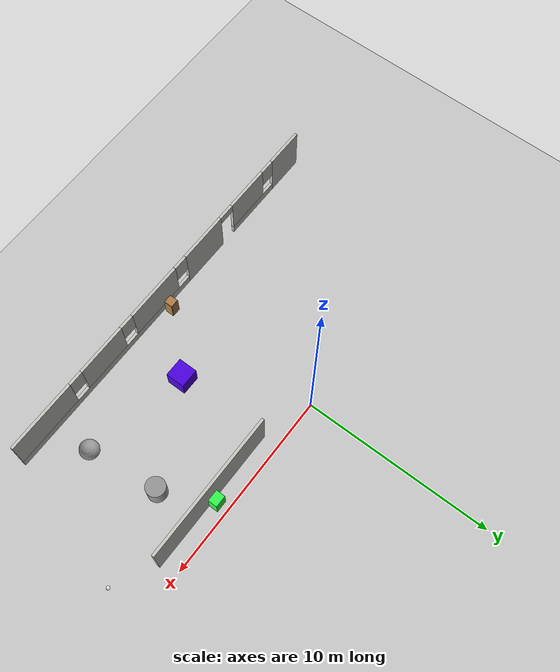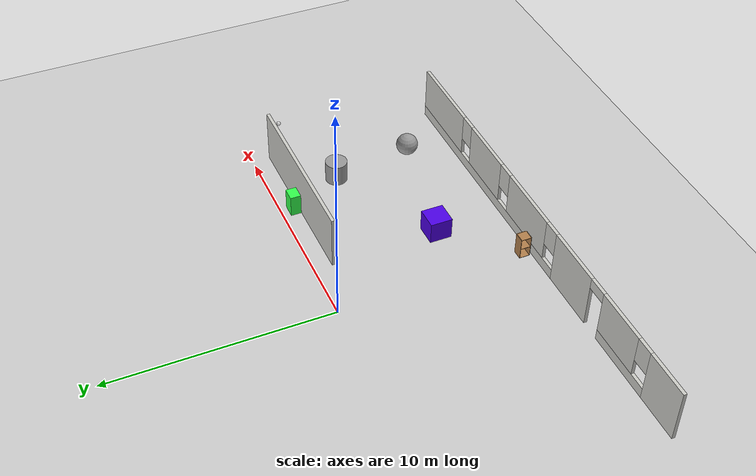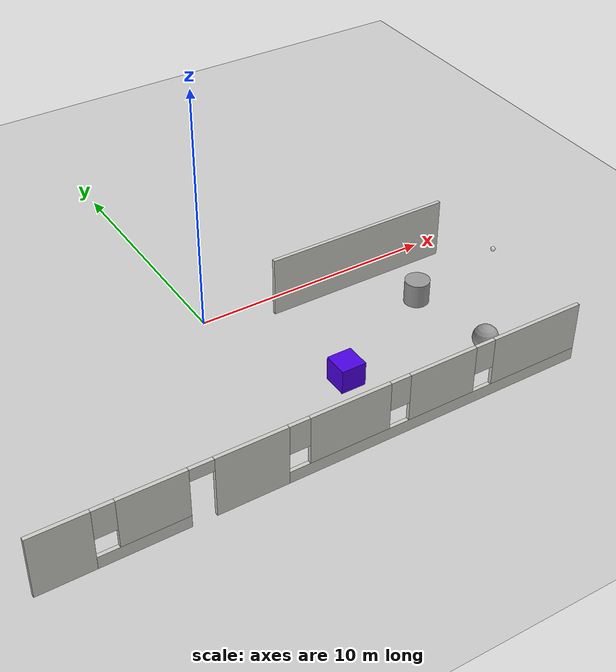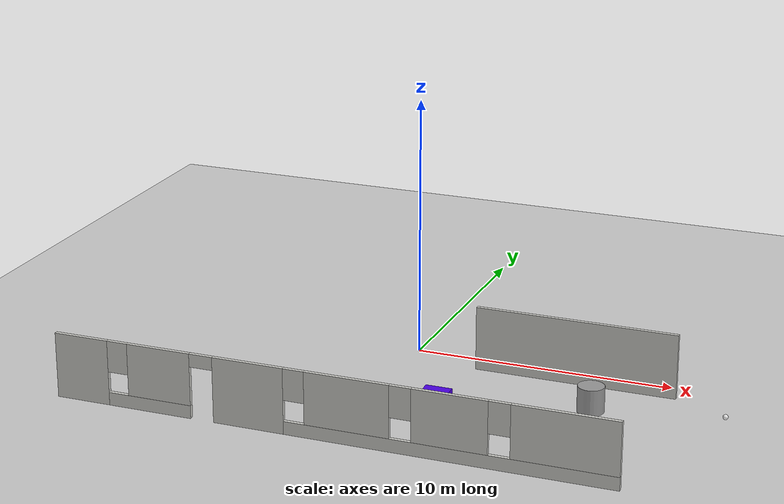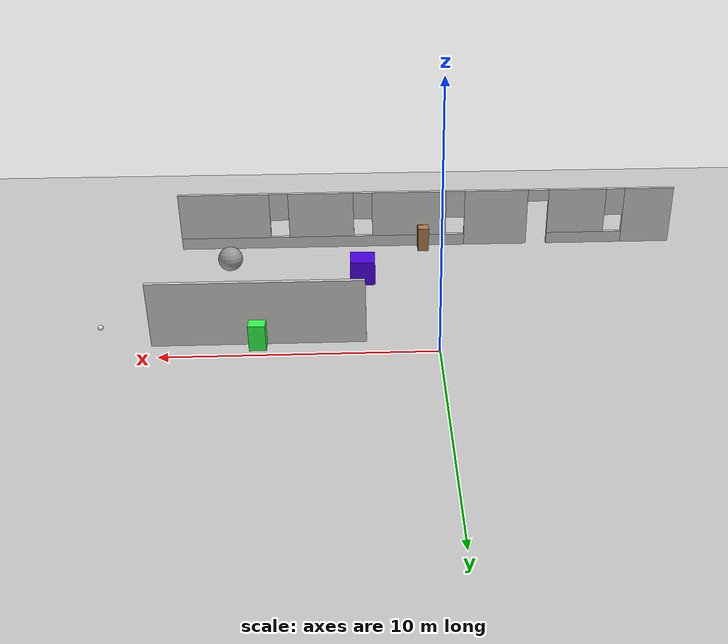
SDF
<sdf version="1.7">
 <world name="default">
  <model name="ground_plane">
   <static>1</static>
   <link name="link">
    <collision name="collision">
     <geometry><plane><normal>0 0 1</normal><size>100 100</size></plane></geometry>
     <surface><friction><ode><mu>100</mu><mu2>50</mu2></ode></friction></surface>
    </collision>
    <visual name="visual">
     <cast_shadows>0</cast_shadows>
     <geometry><plane><normal>0 0 1</normal><size>100 100</size></plane></geometry>
     <material>
      <script><uri>file://media/materials/scripts/gazebo.material</uri><name>Gazebo/Grey</name></script>
     </material>
    </visual>
   </link>
  </model>
  <model name="unit_cylinder">
   <pose>7.77748 -3.12633 0.499994 -3e-06 -1e-06 -0</pose>
   <link name="link">
    <inertial>
     <mass>1</mass>
     <inertia><ixx>0.145833</ixx><ixy>0</ixy><ixz>0</ixz><iyy>0.145833</iyy><iyz>0</iyz><izz>0.125</izz></inertia>
    </inertial>
    <collision name="collision">
     <geometry><cylinder><radius>0.5</radius><length>1</length></cylinder></geometry>
    </collision>
    <visual name="visual">
     <geometry><cylinder><radius>0.5</radius><length>1</length></cylinder></geometry>
     <material>
      <script><name>Gazebo/Grey</name><uri>file://media/materials/scripts/gazebo.material</uri></script>
     </material>
    </visual>
   </link>
  </model>
  <model name="unit_sphere">
   <pose>8.212 -6.8507 0.5 0 -0 0</pose>
   <link name="link">
    <inertial>
     <mass>1</mass>
     <inertia><ixx>0.1</ixx><ixy>0</ixy><ixz>0</ixz><iyy>0.1</iyy><iyz>0</iyz><izz>0.1</izz></inertia>
    </inertial>
    <collision name="collision"><geometry><sphere><radius>0.5</radius></sphere></geometry></collision>
    <visual name="visual">
     <geometry><sphere><radius>0.5</radius></sphere></geometry>
     <material>
      <script><name>Gazebo/Grey</name><uri>file://media/materials/scripts/gazebo.material</uri></script>
     </material>
    </visual>
   </link>
  </model>
  <model name="my_ball">
   <link name="link_0">
    <inertial>
     <mass>1</mass>
     <inertia><ixx>0.1</ixx><ixy>0</ixy><ixz>0</ixz><iyy>0.1</iyy><iyz>0</iyz><izz>0.1</izz></inertia>
    </inertial>
    <visual name="visual">
     <geometry><sphere><radius>0.1</radius></sphere></geometry>
     <material>
      <lighting>1</lighting>
      <script><uri>file://media/materials/scripts/gazebo.material</uri><name>Gazebo/White</name></script>
      <ambient>1 1 1 1</ambient>
      <diffuse>1 1 1 1</diffuse>
      <specular>1 1 1 1</specular>
      <emissive>1 1 1 1</emissive>
      <shader type="vertex"><normal_map>__default__</normal_map></shader>
     </material>
    </visual>
    <collision name="collision">
     <geometry><sphere><radius>0.1</radius></sphere></geometry>
     <surface>
      <friction>
       <ode><mu>1</mu><mu2>1</mu2><fdir1>0 0 0</fdir1><slip1>0</slip1><slip2>0</slip2></ode>
       <torsional>
        <coefficient>1</coefficient>
        <patch_radius>0</patch_radius>
        <surface_radius>0</surface_radius>
        <use_patch_radius>1</use_patch_radius>
        <ode><slip>0</slip></ode>
       </torsional>
      </friction>
      <bounce><restitution_coefficient>0</restitution_coefficient><threshold>1e+06</threshold></bounce>
      <contact>
       <collide_without_contact>0</collide_without_contact>
       <collide_without_contact_bitmask>1</collide_without_contact_bitmask>
       <collide_bitmask>1</collide_bitmask>
       <ode>
        <soft_cfm>0</soft_cfm>
        <soft_erp>0.2</soft_erp>
        <kp>1e+13</kp>
        <kd>1</kd>
        <max_vel>0.01</max_vel>
        <min_depth>0</min_depth>
       </ode>
       <bullet>
        <split_impulse>1</split_impulse>
        <split_impulse_penetration_threshold>-0.01</split_impulse_penetration_threshold>
        <soft_cfm>0</soft_cfm>
        <soft_erp>0.2</soft_erp>
        <kp>1e+13</kp>
        <kd>1</kd>
       </bullet>
      </contact>
     </surface>
    </collision>
   </link>
   <static>0</static>
   <pose>12.4706 -2.06062 0.1 0 -0 0</pose>
  </model>
  <model name="unit_box12">
   <link name="link">
    <inertial>
     <mass>1</mass>
     <inertia>
      <ixx>0.166667</ixx>
      <ixy>0</ixy>
      <ixz>0</ixz>
      <iyy>0.166667</iyy>
      <iyz>0</iyz>
      <izz>0.166667</izz>
     </inertia>
    </inertial>
    <visual name="visual">
     <geometry><box><size>1 1 1</size></box></geometry>
     <material>
      <script><name>Gazebo/Grey</name><uri>file://media/materials/scripts/gazebo.material</uri></script>
      <shader type="pixel"><normal_map>__default__</normal_map></shader>
      <ambient>0.3 0 0.9 0</ambient>
      <diffuse>0.7 0.7 0.7 1</diffuse>
      <specular>0.01 0.01 0.01 1</specular>
      <emissive>0 0 0 1</emissive>
     </material>
    </visual>
    <collision name="collision">
     <geometry><box><size>1 1 1</size></box></geometry>
     <surface>
      <friction>
       <ode><mu>1</mu><mu2>1</mu2><fdir1>0 0 0</fdir1><slip1>0</slip1><slip2>0</slip2></ode>
       <torsional>
        <coefficient>1</coefficient>
        <patch_radius>0</patch_radius>
        <surface_radius>0</surface_radius>
        <use_patch_radius>1</use_patch_radius>
        <ode><slip>0</slip></ode>
       </torsional>
      </friction>
      <bounce><restitution_coefficient>0</restitution_coefficient><threshold>1e+06</threshold></bounce>
      <contact>
       <collide_without_contact>0</collide_without_contact>
       <collide_without_contact_bitmask>1</collide_without_contact_bitmask>
       <collide_bitmask>1</collide_bitmask>
       <ode>
        <soft_cfm>0</soft_cfm>
        <soft_erp>0.2</soft_erp>
        <kp>1e+13</kp>
        <kd>1</kd>
        <max_vel>0.01</max_vel>
        <min_depth>0</min_depth>
       </ode>
       <bullet>
        <split_impulse>1</split_impulse>
        <split_impulse_penetration_threshold>-0.01</split_impulse_penetration_threshold>
        <soft_cfm>0</soft_cfm>
        <soft_erp>0.2</soft_erp>
        <kp>1e+13</kp>
        <kd>1</kd>
       </bullet>
      </contact>
     </surface>
    </collision>
   </link>
   <static>0</static>
   <pose>2.74369 -5.72825 0.5 0 -0 0</pose>
  </model>
  <model name="cabinet_0">
   <static>1</static>
   <link name="cabinet_bottom_plate">
    <inertial>
     <pose>0 0 -1 0 -0 0</pose>
     <inertia><ixx>2.05</ixx><ixy>0</ixy><ixz>0</ixz><iyy>2.05</iyy><iyz>0</iyz><izz>2.05</izz></inertia>
     <mass>25</mass>
    </inertial>
    <collision name="cabinet_bottom_plate_geom">
     <pose>0 0 0.01 0 -0 0</pose>
     <geometry><box><size>0.45 0.45 0.02</size></box></geometry>
    </collision>
    <visual name="cabinet_bottom_plate_geom_visual">
     <pose>0 0 0.01 0 -0 0</pose>
     <geometry><box><size>0.45 0.45 0.02</size></box></geometry>
     <material>
      <script><uri>file://media/materials/scripts/gazebo.material</uri><name>Gazebo/Wood</name></script>
     </material>
    </visual>
    <collision name="cabinet_bottom_plate_geom_cabinet_back_plate">
     <pose>0.235 0 0.51 0 -0 0</pose>
     <geometry><box><size>0.02 0.45 1.02</size></box></geometry>
    </collision>
    <visual name="cabinet_bottom_plate_geom_cabinet_back_plate_visual">
     <pose>0.235 0 0.51 0 -0 0</pose>
     <geometry><box><size>0.02 0.45 1.02</size></box></geometry>
     <material>
      <script><uri>file://media/materials/scripts/gazebo.material</uri><name>Gazebo/Wood</name></script>
     </material>
    </visual>
    <collision name="cabinet_bottom_plate_geom_cabinet_left_plate">
     <pose>0 0.235 0.51 0 -0 0</pose>
     <geometry><box><size>0.45 0.02 1.02</size></box></geometry>
    </collision>
    <visual name="cabinet_bottom_plate_geom_cabinet_left_plate_visual">
     <pose>0 0.235 0.51 0 -0 0</pose>
     <geometry><box><size>0.45 0.02 1.02</size></box></geometry>
     <material>
      <script><uri>file://media/materials/scripts/gazebo.material</uri><name>Gazebo/Wood</name></script>
     </material>
    </visual>
    <collision name="cabinet_bottom_plate_geom_cabinet_middle_plate">
     <pose>0 0 0.51 0 -0 0</pose>
     <geometry><box><size>0.45 0.45 0.02</size></box></geometry>
    </collision>
    <visual name="cabinet_bottom_plate_geom_cabinet_middle_plate_visual">
     <pose>0 0 0.51 0 -0 0</pose>
     <geometry><box><size>0.45 0.45 0.02</size></box></geometry>
     <material>
      <script><uri>file://media/materials/scripts/gazebo.material</uri><name>Gazebo/Wood</name></script>
     </material>
    </visual>
    <collision name="cabinet_bottom_plate_geom_cabinet_right_plate">
     <pose>0 -0.235 0.51 0 -0 0</pose>
     <geometry><box><size>0.45 0.02 1.02</size></box></geometry>
    </collision>
    <visual name="cabinet_bottom_plate_geom_cabinet_right_plate_visual">
     <pose>0 -0.235 0.51 0 -0 0</pose>
     <geometry><box><size>0.45 0.02 1.02</size></box></geometry>
     <material>
      <script><uri>file://media/materials/scripts/gazebo.material</uri><name>Gazebo/Wood</name></script>
     </material>
    </visual>
    <collision name="cabinet_bottom_plate_geom_cabinet_top_plate">
     <pose>0 0 1.01 0 -0 0</pose>
     <geometry><box><size>0.45 0.45 0.02</size></box></geometry>
    </collision>
    <visual name="cabinet_bottom_plate_geom_cabinet_top_plate_visual">
     <pose>0 0 1.01 0 -0 0</pose>
     <geometry><box><size>0.45 0.45 0.02</size></box></geometry>
     <material>
      <script><uri>file://media/materials/scripts/gazebo.material</uri><name>Gazebo/Wood</name></script>
     </material>
    </visual>
   </link>
   <pose>0.120833 -8.54479 0 0 -0 0</pose>
  </model>
  <model name="unit_box_green">
   <link name="link">
    <inertial>
     <mass>1</mass>
     <inertia>
      <ixx>0.166667</ixx>
      <ixy>0</ixy>
      <ixz>0</ixz>
      <iyy>0.166667</iyy>
      <iyz>0</iyz>
      <izz>0.166667</izz>
     </inertia>
    </inertial>
    <visual name="visual">
     <geometry><box><size>0.617794 0.479075 1</size></box></geometry>
     <material>
      <script><name>Gazebo/Grey</name><uri>file://media/materials/scripts/gazebo.material</uri></script>
      <shader type="pixel"><normal_map>__default__</normal_map></shader>
      <ambient>0.2 1 0.3 0</ambient>
      <diffuse>0.7 0.7 0.7 1</diffuse>
      <specular>0.01 0.01 0.01 1</specular>
      <emissive>0 0 0 1</emissive>
     </material>
    </visual>
    <collision name="collision">
     <geometry><box><size>0.617794 0.479075 1</size></box></geometry>
     <surface>
      <friction>
       <ode><mu>1</mu><mu2>1</mu2><fdir1>0 0 0</fdir1><slip1>0</slip1><slip2>0</slip2></ode>
       <torsional>
        <coefficient>1</coefficient>
        <patch_radius>0</patch_radius>
        <surface_radius>0</surface_radius>
        <use_patch_radius>1</use_patch_radius>
        <ode><slip>0</slip></ode>
       </torsional>
      </friction>
      <bounce><restitution_coefficient>0</restitution_coefficient><threshold>1e+06</threshold></bounce>
      <contact>
       <collide_without_contact>0</collide_without_contact>
       <collide_without_contact_bitmask>1</collide_without_contact_bitmask>
       <collide_bitmask>1</collide_bitmask>
       <ode>
        <soft_cfm>0</soft_cfm>
        <soft_erp>0.2</soft_erp>
        <kp>1e+13</kp>
        <kd>1</kd>
        <max_vel>0.01</max_vel>
        <min_depth>0</min_depth>
       </ode>
       <bullet>
        <split_impulse>1</split_impulse>
        <split_impulse_penetration_threshold>-0.01</split_impulse_penetration_threshold>
        <soft_cfm>0</soft_cfm>
        <soft_erp>0.2</soft_erp>
        <kp>1e+13</kp>
        <kd>1</kd>
       </bullet>
      </contact>
     </surface>
    </collision>
   </link>
   <static>0</static>
   <pose>6.51345 -0.571137 0.5 0 1e-06 -0.002895</pose>
  </model>
  <model name="training_area">
   <link name="Wall_34">
    <pose>6.59252 -1.22485 0 0 -0 0</pose>
    <visual name="Wall_34_Visual">
     <pose>0 0 1.25 0 -0 0</pose>
     <geometry><box><size>7.75 0.15 2.5</size></box></geometry>
     <material>
      <script><uri>file://media/materials/scripts/gazebo.material</uri><name>Gazebo/CeilingTiled</name></script>
      <ambient>0.996078 0.47451 0.0196078 1</ambient>
      <shader type="pixel"/>
     </material>
     <meta><layer>0</layer></meta>
    </visual>
    <collision name="Wall_34_Collision">
     <pose>0 0 1.25 0 -0 0</pose>
     <geometry><box><size>7.75 0.15 2.5</size></box></geometry>
     <surface>
      <friction>
       <ode><mu>1</mu><mu2>1</mu2><fdir1>0 0 0</fdir1><slip1>0</slip1><slip2>0</slip2></ode>
       <torsional>
        <coefficient>1</coefficient>
        <patch_radius>0</patch_radius>
        <surface_radius>0</surface_radius>
        <use_patch_radius>1</use_patch_radius>
        <ode><slip>0</slip></ode>
       </torsional>
      </friction>
      <bounce><restitution_coefficient>0</restitution_coefficient><threshold>1e+06</threshold></bounce>
      <contact>
       <collide_without_contact>0</collide_without_contact>
       <collide_without_contact_bitmask>1</collide_without_contact_bitmask>
       <collide_bitmask>1</collide_bitmask>
       <ode>
        <soft_cfm>0</soft_cfm>
        <soft_erp>0.2</soft_erp>
        <kp>1e+13</kp>
        <kd>1</kd>
        <max_vel>0.01</max_vel>
        <min_depth>0</min_depth>
       </ode>
       <bullet>
        <split_impulse>1</split_impulse>
        <split_impulse_penetration_threshold>-0.01</split_impulse_penetration_threshold>
        <soft_cfm>0</soft_cfm>
        <soft_erp>0.2</soft_erp>
        <kp>1e+13</kp>
        <kd>1</kd>
       </bullet>
      </contact>
     </surface>
    </collision>
   </link>
   <link name="Wall_6">
    <pose>0.005 -9.3 0 0 -0 0</pose>
    <inertial>
     <mass>1</mass>
     <inertia><ixx>1</ixx><ixy>0</ixy><ixz>0</ixz><iyy>1</iyy><iyz>0</iyz><izz>1</izz></inertia>
    </inertial>
    <visual name="Wall_6_Visual_7">
     <pose>4.59406 0 1.5 0 -0 0</pose>
     <geometry><box><size>2.78031 0.15 2</size></box></geometry>
     <material>
      <script><uri>file://media/materials/scripts/gazebo.material</uri><name>Gazebo/CeilingTiled</name></script>
      <ambient>1 0.165 0.306 1</ambient>
      <shader type="pixel"><normal_map>__default__</normal_map></shader>
      <diffuse>1 1 1 1</diffuse>
      <specular>0 0 0 1</specular>
      <emissive>0 0 0 1</emissive>
     </material>
     <meta><layer>0</layer></meta>
    </visual>
    <visual name="Wall_6_Visual_9">
     <pose>-8.09976 0 1.9 0 -0 0</pose>
     <geometry><box><size>0.8 0.15 1.2</size></box></geometry>
     <material>
      <script><uri>file://media/materials/scripts/gazebo.material</uri><name>Gazebo/CeilingTiled</name></script>
      <ambient>0.6 0.965 0.406 1</ambient>
      <shader type="pixel"><normal_map>__default__</normal_map></shader>
      <diffuse>1 1 1 1</diffuse>
      <specular>0 0 0 1</specular>
      <emissive>0 0 0 1</emissive>
     </material>
     <meta><layer>0</layer></meta>
    </visual>
    <visual name="Wall_6_Visual_11">
     <pose>2.8039 0 1.9 0 -0 0</pose>
     <geometry><box><size>0.8 0.15 1.2</size></box></geometry>
     <material>
      <script><uri>file://media/materials/scripts/gazebo.material</uri><name>Gazebo/CeilingTiled</name></script>
      <ambient>1 0.165 0.306 1</ambient>
      <shader type="pixel"><normal_map>__default__</normal_map></shader>
      <diffuse>1 1 1 1</diffuse>
      <specular>0 0 0 1</specular>
      <emissive>0 0 0 1</emissive>
     </material>
     <meta><layer>0</layer></meta>
    </visual>
    <visual name="Wall_6_Visual_12">
     <pose>6.38421 0 1.9 0 -0 0</pose>
     <geometry><box><size>0.8 0.15 1.2</size></box></geometry>
     <material>
      <script><uri>file://media/materials/scripts/gazebo.material</uri><name>Gazebo/CeilingTiled</name></script>
      <ambient>1 0.765 0.906 1</ambient>
      <shader type="pixel"><normal_map>__default__</normal_map></shader>
      <diffuse>1 1 1 1</diffuse>
      <specular>0 0 0 1</specular>
      <emissive>0 0 0 1</emissive>
     </material>
     <meta><layer>0</layer></meta>
    </visual>
    <visual name="Wall_6_Visual_2">
     <pose>-6.85666 0 0.25 0 -0 0</pose>
     <geometry><box><size>3.2862 0.15 0.5</size></box></geometry>
     <material>
      <script><uri>file://media/materials/scripts/gazebo.material</uri><name>Gazebo/CeilingTiled</name></script>
      <ambient>0.5 0.9 0.1 1</ambient>
      <shader type="pixel"><normal_map>__default__</normal_map></shader>
      <diffuse>1 1 1 1</diffuse>
      <specular>0 0 0 1</specular>
      <emissive>0 0 0 1</emissive>
     </material>
     <meta><layer>0</layer></meta>
    </visual>
    <visual name="Wall_6_Visual_10">
     <pose>-1.18326 0 1.9 0 -0 0</pose>
     <geometry><box><size>0.8 0.15 1.2</size></box></geometry>
     <material>
      <script><uri>file://media/materials/scripts/gazebo.material</uri><name>Gazebo/CeilingTiled</name></script>
      <ambient>1 0.365 0.106 1</ambient>
      <shader type="pixel"><normal_map>__default__</normal_map></shader>
      <diffuse>1 1 1 1</diffuse>
      <specular>0 0 0 1</specular>
      <emissive>0 0 0 1</emissive>
     </material>
     <meta><layer>0</layer></meta>
    </visual>
    <visual name="Wall_6_Visual_6">
     <pose>0.810323 0 1.5 0 -0 0</pose>
     <geometry><box><size>3.18716 0.15 2</size></box></geometry>
     <material>
      <script><uri>file://media/materials/scripts/gazebo.material</uri><name>Gazebo/CeilingTiled</name></script>
      <ambient>1 0.565 0.1 1</ambient>
      <shader type="pixel"><normal_map>__default__</normal_map></shader>
      <diffuse>1 1 1 1</diffuse>
      <specular>0 0 0 1</specular>
      <emissive>0 0 0 1</emissive>
     </material>
     <meta><layer>0</layer></meta>
    </visual>
    <visual name="Wall_6_Visual_14">
     <pose>-4.76356 0 2.25 0 -0 0</pose>
     <geometry><box><size>0.9 0.15 0.5</size></box></geometry>
     <material>
      <script><uri>file://media/materials/scripts/gazebo.material</uri><name>Gazebo/CeilingTiled</name></script>
      <ambient>0.7 1 0.606 1</ambient>
      <shader type="pixel"><normal_map>__default__</normal_map></shader>
      <diffuse>1 1 1 1</diffuse>
      <specular>0 0 0 1</specular>
      <emissive>0 0 0 1</emissive>
     </material>
     <meta><layer>0</layer></meta>
    </visual>
    <visual name="Wall_6_Visual_13">
     <pose>-4.76356 0 2.25 0 -0 0</pose>
     <geometry><box><size>0.9 0.15 0.5</size></box></geometry>
     <material>
      <script><uri>file://media/materials/scripts/gazebo.material</uri><name>Gazebo/CeilingTiled</name></script>
      <ambient>0.7 0.965 0.606 1</ambient>
      <shader type="pixel"><normal_map>__default__</normal_map></shader>
      <diffuse>1 1 1 1</diffuse>
      <specular>0 0 0 1</specular>
      <emissive>0 0 0 1</emissive>
     </material>
     <meta><layer>0</layer></meta>
    </visual>
    <visual name="Wall_6_Visual_5">
     <pose>-6.45666 0 1.5 0 -0 0</pose>
     <geometry><box><size>2.4862 0.15 2</size></box></geometry>
     <material>
      <script><uri>file://media/materials/scripts/gazebo.material</uri><name>Gazebo/CeilingTiled</name></script>
      <ambient>0.5 0.965 0.9 1</ambient>
      <shader type="pixel"><normal_map>__default__</normal_map></shader>
      <diffuse>1 1 1 1</diffuse>
      <specular>0 0 0 1</specular>
      <emissive>0 0 0 1</emissive>
     </material>
     <meta><layer>0</layer></meta>
    </visual>
    <visual name="Wall_6_Visual_1">
     <pose>-2.94841 0 1.25 0 -0 0</pose>
     <geometry><box><size>2.73031 0.15 2.5</size></box></geometry>
     <material>
      <script><uri>file://media/materials/scripts/gazebo.material</uri><name>Gazebo/CeilingTiled</name></script>
      <ambient>0.1 0.5 1 1</ambient>
      <shader type="pixel"><normal_map>__default__</normal_map></shader>
      <diffuse>1 1 1 1</diffuse>
      <specular>0 0 0 1</specular>
      <emissive>0 0 0 1</emissive>
     </material>
     <meta><layer>0</layer></meta>
    </visual>
    <visual name="Wall_6_Visual_0">
     <pose>-9.56238 0 1.25 0 -0 0</pose>
     <geometry><box><size>2.12524 0.15 2.5</size></box></geometry>
     <material>
      <script><uri>file://media/materials/scripts/gazebo.material</uri><name>Gazebo/CeilingTiled</name></script>
      <ambient>0.6 0.265 0.106 1</ambient>
      <shader type="pixel"><normal_map>__default__</normal_map></shader>
      <diffuse>1 1 1 1</diffuse>
      <specular>0 0 0 1</specular>
      <emissive>0 0 0 1</emissive>
     </material>
     <meta><layer>0</layer></meta>
    </visual>
    <visual name="Wall_6_Visual_4">
     <pose>-6.45666 0 1.5 0 -0 0</pose>
     <geometry><box><size>2.4862 0.15 2</size></box></geometry>
     <material>
      <script><uri>file://media/materials/scripts/gazebo.material</uri><name>Gazebo/CeilingTiled</name></script>
      <ambient>0.8 0.165 0.306 1</ambient>
      <shader type="pixel"><normal_map>__default__</normal_map></shader>
      <diffuse>1 1 1 1</diffuse>
      <specular>0 0 0 1</specular>
      <emissive>0 0 0 1</emissive>
     </material>
     <meta><layer>0</layer></meta>
    </visual>
    <visual name="Wall_6_Visual_8">
     <pose>8.70461 0 1.5 0 -0 0</pose>
     <geometry><box><size>3.84079 0.15 2</size></box></geometry>
     <material>
      <script><uri>file://media/materials/scripts/gazebo.material</uri><name>Gazebo/CeilingTiled</name></script>
      <ambient>0.7 0.8 0.1 1</ambient>
      <shader type="pixel"><normal_map>__default__</normal_map></shader>
      <diffuse>1 1 1 1</diffuse>
      <specular>0 0 0 1</specular>
      <emissive>0 0 0 1</emissive>
     </material>
     <meta><layer>0</layer></meta>
    </visual>
    <visual name="Wall_6_Visual_3">
     <pose>4.52087 0 0.25 0 -0 0</pose>
     <geometry><box><size>12.2083 0.15 0.5</size></box></geometry>
     <material>
      <script><uri>file://media/materials/scripts/gazebo.material</uri><name>Gazebo/CeilingTiled</name></script>
      <ambient>0.2 0.6 0.906 1</ambient>
      <shader type="pixel"><normal_map>__default__</normal_map></shader>
      <diffuse>1 1 1 1</diffuse>
      <specular>0 0 0 1</specular>
      <emissive>0 0 0 1</emissive>
     </material>
     <meta><layer>0</layer></meta>
    </visual>
    <collision name="Wall_6_Collision_11">
     <pose>2.8039 0 1.9 0 -0 0</pose>
     <geometry><box><size>0.8 0.15 1.2</size></box></geometry>
     <surface>
      <friction>
       <ode><mu>1</mu><mu2>1</mu2><fdir1>0 0 0</fdir1><slip1>0</slip1><slip2>0</slip2></ode>
       <torsional>
        <coefficient>1</coefficient>
        <patch_radius>0</patch_radius>
        <surface_radius>0</surface_radius>
        <use_patch_radius>1</use_patch_radius>
        <ode><slip>0</slip></ode>
       </torsional>
      </friction>
      <bounce><restitution_coefficient>0</restitution_coefficient><threshold>1e+06</threshold></bounce>
      <contact>
       <collide_without_contact>0</collide_without_contact>
       <collide_without_contact_bitmask>1</collide_without_contact_bitmask>
       <collide_bitmask>1</collide_bitmask>
       <ode>
        <soft_cfm>0</soft_cfm>
        <soft_erp>0.2</soft_erp>
        <kp>1e+13</kp>
        <kd>1</kd>
        <max_vel>0.01</max_vel>
        <min_depth>0</min_depth>
       </ode>
       <bullet>
        <split_impulse>1</split_impulse>
        <split_impulse_penetration_threshold>-0.01</split_impulse_penetration_threshold>
        <soft_cfm>0</soft_cfm>
        <soft_erp>0.2</soft_erp>
        <kp>1e+13</kp>
        <kd>1</kd>
       </bullet>
      </contact>
     </surface>
    </collision>
    <collision name="Wall_6_Collision_13">
     <pose>-4.76356 0 2.25 0 -0 0</pose>
     <geometry><box><size>0.9 0.15 0.5</size></box></geometry>
     <surface>
      <friction>
       <ode><mu>1</mu><mu2>1</mu2><fdir1>0 0 0</fdir1><slip1>0</slip1><slip2>0</slip2></ode>
       <torsional>
        <coefficient>1</coefficient>
        <patch_radius>0</patch_radius>
        <surface_radius>0</surface_radius>
        <use_patch_radius>1</use_patch_radius>
        <ode><slip>0</slip></ode>
       </torsional>
      </friction>
      <bounce><restitution_coefficient>0</restitution_coefficient><threshold>1e+06</threshold></bounce>
      <contact>
       <collide_without_contact>0</collide_without_contact>
       <collide_without_contact_bitmask>1</collide_without_contact_bitmask>
       <collide_bitmask>1</collide_bitmask>
       <ode>
        <soft_cfm>0</soft_cfm>
        <soft_erp>0.2</soft_erp>
        <kp>1e+13</kp>
        <kd>1</kd>
        <max_vel>0.01</max_vel>
        <min_depth>0</min_depth>
       </ode>
       <bullet>
        <split_impulse>1</split_impulse>
        <split_impulse_penetration_threshold>-0.01</split_impulse_penetration_threshold>
        <soft_cfm>0</soft_cfm>
        <soft_erp>0.2</soft_erp>
        <kp>1e+13</kp>
        <kd>1</kd>
       </bullet>
      </contact>
     </surface>
    </collision>
    <collision name="Wall_6_Collision_14">
     <pose>-4.76356 0 2.25 0 -0 0</pose>
     <geometry><box><size>0.9 0.15 0.5</size></box></geometry>
     <surface>
      <friction>
       <ode><mu>1</mu><mu2>1</mu2><fdir1>0 0 0</fdir1><slip1>0</slip1><slip2>0</slip2></ode>
       <torsional>
        <coefficient>1</coefficient>
        <patch_radius>0</patch_radius>
        <surface_radius>0</surface_radius>
        <use_patch_radius>1</use_patch_radius>
        <ode><slip>0</slip></ode>
       </torsional>
      </friction>
      <bounce><restitution_coefficient>0</restitution_coefficient><threshold>1e+06</threshold></bounce>
      <contact>
       <collide_without_contact>0</collide_without_contact>
       <collide_without_contact_bitmask>1</collide_without_contact_bitmask>
       <collide_bitmask>1</collide_bitmask>
       <ode>
        <soft_cfm>0</soft_cfm>
        <soft_erp>0.2</soft_erp>
        <kp>1e+13</kp>
        <kd>1</kd>
        <max_vel>0.01</max_vel>
        <min_depth>0</min_depth>
       </ode>
       <bullet>
        <split_impulse>1</split_impulse>
        <split_impulse_penetration_threshold>-0.01</split_impulse_penetration_threshold>
        <soft_cfm>0</soft_cfm>
        <soft_erp>0.2</soft_erp>
        <kp>1e+13</kp>
        <kd>1</kd>
       </bullet>
      </contact>
     </surface>
    </collision>
    <collision name="Wall_6_Collision_12">
     <pose>6.38421 0 1.9 0 -0 0</pose>
     <geometry><box><size>0.8 0.15 1.2</size></box></geometry>
     <surface>
      <friction>
       <ode><mu>1</mu><mu2>1</mu2><fdir1>0 0 0</fdir1><slip1>0</slip1><slip2>0</slip2></ode>
       <torsional>
        <coefficient>1</coefficient>
        <patch_radius>0</patch_radius>
        <surface_radius>0</surface_radius>
        <use_patch_radius>1</use_patch_radius>
        <ode><slip>0</slip></ode>
       </torsional>
      </friction>
      <bounce><restitution_coefficient>0</restitution_coefficient><threshold>1e+06</threshold></bounce>
      <contact>
       <collide_without_contact>0</collide_without_contact>
       <collide_without_contact_bitmask>1</collide_without_contact_bitmask>
       <collide_bitmask>1</collide_bitmask>
       <ode>
        <soft_cfm>0</soft_cfm>
        <soft_erp>0.2</soft_erp>
        <kp>1e+13</kp>
        <kd>1</kd>
        <max_vel>0.01</max_vel>
        <min_depth>0</min_depth>
       </ode>
       <bullet>
        <split_impulse>1</split_impulse>
        <split_impulse_penetration_threshold>-0.01</split_impulse_penetration_threshold>
        <soft_cfm>0</soft_cfm>
        <soft_erp>0.2</soft_erp>
        <kp>1e+13</kp>
        <kd>1</kd>
       </bullet>
      </contact>
     </surface>
    </collision>
    <collision name="Wall_6_Collision_6">
     <pose>0.810323 0 1.5 0 -0 0</pose>
     <geometry><box><size>3.18716 0.15 2</size></box></geometry>
     <surface>
      <friction>
       <ode><mu>1</mu><mu2>1</mu2><fdir1>0 0 0</fdir1><slip1>0</slip1><slip2>0</slip2></ode>
       <torsional>
        <coefficient>1</coefficient>
        <patch_radius>0</patch_radius>
        <surface_radius>0</surface_radius>
        <use_patch_radius>1</use_patch_radius>
        <ode><slip>0</slip></ode>
       </torsional>
      </friction>
      <bounce><restitution_coefficient>0</restitution_coefficient><threshold>1e+06</threshold></bounce>
      <contact>
       <collide_without_contact>0</collide_without_contact>
       <collide_without_contact_bitmask>1</collide_without_contact_bitmask>
       <collide_bitmask>1</collide_bitmask>
       <ode>
        <soft_cfm>0</soft_cfm>
        <soft_erp>0.2</soft_erp>
        <kp>1e+13</kp>
        <kd>1</kd>
        <max_vel>0.01</max_vel>
        <min_depth>0</min_depth>
       </ode>
       <bullet>
        <split_impulse>1</split_impulse>
        <split_impulse_penetration_threshold>-0.01</split_impulse_penetration_threshold>
        <soft_cfm>0</soft_cfm>
        <soft_erp>0.2</soft_erp>
        <kp>1e+13</kp>
        <kd>1</kd>
       </bullet>
      </contact>
     </surface>
    </collision>
    <collision name="Wall_6_Collision_5">
     <pose>-6.45666 0 1.5 0 -0 0</pose>
     <geometry><box><size>2.4862 0.15 2</size></box></geometry>
     <surface>
      <friction>
       <ode><mu>1</mu><mu2>1</mu2><fdir1>0 0 0</fdir1><slip1>0</slip1><slip2>0</slip2></ode>
       <torsional>
        <coefficient>1</coefficient>
        <patch_radius>0</patch_radius>
        <surface_radius>0</surface_radius>
        <use_patch_radius>1</use_patch_radius>
        <ode><slip>0</slip></ode>
       </torsional>
      </friction>
      <bounce><restitution_coefficient>0</restitution_coefficient><threshold>1e+06</threshold></bounce>
      <contact>
       <collide_without_contact>0</collide_without_contact>
       <collide_without_contact_bitmask>1</collide_without_contact_bitmask>
       <collide_bitmask>1</collide_bitmask>
       <ode>
        <soft_cfm>0</soft_cfm>
        <soft_erp>0.2</soft_erp>
        <kp>1e+13</kp>
        <kd>1</kd>
        <max_vel>0.01</max_vel>
        <min_depth>0</min_depth>
       </ode>
       <bullet>
        <split_impulse>1</split_impulse>
        <split_impulse_penetration_threshold>-0.01</split_impulse_penetration_threshold>
        <soft_cfm>0</soft_cfm>
        <soft_erp>0.2</soft_erp>
        <kp>1e+13</kp>
        <kd>1</kd>
       </bullet>
      </contact>
     </surface>
    </collision>
    <collision name="Wall_6_Collision_3">
     <pose>4.52087 0 0.25 0 -0 0</pose>
     <geometry><box><size>12.2083 0.15 0.5</size></box></geometry>
     <surface>
      <friction>
       <ode><mu>1</mu><mu2>1</mu2><fdir1>0 0 0</fdir1><slip1>0</slip1><slip2>0</slip2></ode>
       <torsional>
        <coefficient>1</coefficient>
        <patch_radius>0</patch_radius>
        <surface_radius>0</surface_radius>
        <use_patch_radius>1</use_patch_radius>
        <ode><slip>0</slip></ode>
       </torsional>
      </friction>
      <bounce><restitution_coefficient>0</restitution_coefficient><threshold>1e+06</threshold></bounce>
      <contact>
       <collide_without_contact>0</collide_without_contact>
       <collide_without_contact_bitmask>1</collide_without_contact_bitmask>
       <collide_bitmask>1</collide_bitmask>
       <ode>
        <soft_cfm>0</soft_cfm>
        <soft_erp>0.2</soft_erp>
        <kp>1e+13</kp>
        <kd>1</kd>
        <max_vel>0.01</max_vel>
        <min_depth>0</min_depth>
       </ode>
       <bullet>
        <split_impulse>1</split_impulse>
        <split_impulse_penetration_threshold>-0.01</split_impulse_penetration_threshold>
        <soft_cfm>0</soft_cfm>
        <soft_erp>0.2</soft_erp>
        <kp>1e+13</kp>
        <kd>1</kd>
       </bullet>
      </contact>
     </surface>
    </collision>
    <collision name="Wall_6_Collision_10">
     <pose>-1.18326 0 1.9 0 -0 0</pose>
     <geometry><box><size>0.8 0.15 1.2</size></box></geometry>
     <surface>
      <friction>
       <ode><mu>1</mu><mu2>1</mu2><fdir1>0 0 0</fdir1><slip1>0</slip1><slip2>0</slip2></ode>
       <torsional>
        <coefficient>1</coefficient>
        <patch_radius>0</patch_radius>
        <surface_radius>0</surface_radius>
        <use_patch_radius>1</use_patch_radius>
        <ode><slip>0</slip></ode>
       </torsional>
      </friction>
      <bounce><restitution_coefficient>0</restitution_coefficient><threshold>1e+06</threshold></bounce>
      <contact>
       <collide_without_contact>0</collide_without_contact>
       <collide_without_contact_bitmask>1</collide_without_contact_bitmask>
       <collide_bitmask>1</collide_bitmask>
       <ode>
        <soft_cfm>0</soft_cfm>
        <soft_erp>0.2</soft_erp>
        <kp>1e+13</kp>
        <kd>1</kd>
        <max_vel>0.01</max_vel>
        <min_depth>0</min_depth>
       </ode>
       <bullet>
        <split_impulse>1</split_impulse>
        <split_impulse_penetration_threshold>-0.01</split_impulse_penetration_threshold>
        <soft_cfm>0</soft_cfm>
        <soft_erp>0.2</soft_erp>
        <kp>1e+13</kp>
        <kd>1</kd>
       </bullet>
      </contact>
     </surface>
    </collision>
    <collision name="Wall_6_Collision_1">
     <pose>-2.94841 0 1.25 0 -0 0</pose>
     <geometry><box><size>2.73031 0.15 2.5</size></box></geometry>
     <surface>
      <friction>
       <ode><mu>1</mu><mu2>1</mu2><fdir1>0 0 0</fdir1><slip1>0</slip1><slip2>0</slip2></ode>
       <torsional>
        <coefficient>1</coefficient>
        <patch_radius>0</patch_radius>
        <surface_radius>0</surface_radius>
        <use_patch_radius>1</use_patch_radius>
        <ode><slip>0</slip></ode>
       </torsional>
      </friction>
      <bounce><restitution_coefficient>0</restitution_coefficient><threshold>1e+06</threshold></bounce>
      <contact>
       <collide_without_contact>0</collide_without_contact>
       <collide_without_contact_bitmask>1</collide_without_contact_bitmask>
       <collide_bitmask>1</collide_bitmask>
       <ode>
        <soft_cfm>0</soft_cfm>
        <soft_erp>0.2</soft_erp>
        <kp>1e+13</kp>
        <kd>1</kd>
        <max_vel>0.01</max_vel>
        <min_depth>0</min_depth>
       </ode>
       <bullet>
        <split_impulse>1</split_impulse>
        <split_impulse_penetration_threshold>-0.01</split_impulse_penetration_threshold>
        <soft_cfm>0</soft_cfm>
        <soft_erp>0.2</soft_erp>
        <kp>1e+13</kp>
        <kd>1</kd>
       </bullet>
      </contact>
     </surface>
    </collision>
    <collision name="Wall_6_Collision_8">
     <pose>8.70461 0 1.5 0 -0 0</pose>
     <geometry><box><size>3.84079 0.15 2</size></box></geometry>
     <surface>
      <friction>
       <ode><mu>1</mu><mu2>1</mu2><fdir1>0 0 0</fdir1><slip1>0</slip1><slip2>0</slip2></ode>
       <torsional>
        <coefficient>1</coefficient>
        <patch_radius>0</patch_radius>
        <surface_radius>0</surface_radius>
        <use_patch_radius>1</use_patch_radius>
        <ode><slip>0</slip></ode>
       </torsional>
      </friction>
      <bounce><restitution_coefficient>0</restitution_coefficient><threshold>1e+06</threshold></bounce>
      <contact>
       <collide_without_contact>0</collide_without_contact>
       <collide_without_contact_bitmask>1</collide_without_contact_bitmask>
       <collide_bitmask>1</collide_bitmask>
       <ode>
        <soft_cfm>0</soft_cfm>
        <soft_erp>0.2</soft_erp>
        <kp>1e+13</kp>
        <kd>1</kd>
        <max_vel>0.01</max_vel>
        <min_depth>0</min_depth>
       </ode>
       <bullet>
        <split_impulse>1</split_impulse>
        <split_impulse_penetration_threshold>-0.01</split_impulse_penetration_threshold>
        <soft_cfm>0</soft_cfm>
        <soft_erp>0.2</soft_erp>
        <kp>1e+13</kp>
        <kd>1</kd>
       </bullet>
      </contact>
     </surface>
    </collision>
    <collision name="Wall_6_Collision_2">
     <pose>-6.85666 0 0.25 0 -0 0</pose>
     <geometry><box><size>3.2862 0.15 0.5</size></box></geometry>
     <surface>
      <friction>
       <ode><mu>1</mu><mu2>1</mu2><fdir1>0 0 0</fdir1><slip1>0</slip1><slip2>0</slip2></ode>
       <torsional>
        <coefficient>1</coefficient>
        <patch_radius>0</patch_radius>
        <surface_radius>0</surface_radius>
        <use_patch_radius>1</use_patch_radius>
        <ode><slip>0</slip></ode>
       </torsional>
      </friction>
      <bounce><restitution_coefficient>0</restitution_coefficient><threshold>1e+06</threshold></bounce>
      <contact>
       <collide_without_contact>0</collide_without_contact>
       <collide_without_contact_bitmask>1</collide_without_contact_bitmask>
       <collide_bitmask>1</collide_bitmask>
       <ode>
        <soft_cfm>0</soft_cfm>
        <soft_erp>0.2</soft_erp>
        <kp>1e+13</kp>
        <kd>1</kd>
        <max_vel>0.01</max_vel>
        <min_depth>0</min_depth>
       </ode>
       <bullet>
        <split_impulse>1</split_impulse>
        <split_impulse_penetration_threshold>-0.01</split_impulse_penetration_threshold>
        <soft_cfm>0</soft_cfm>
        <soft_erp>0.2</soft_erp>
        <kp>1e+13</kp>
        <kd>1</kd>
       </bullet>
      </contact>
     </surface>
    </collision>
    <collision name="Wall_6_Collision_9">
     <pose>-8.09976 0 1.9 0 -0 0</pose>
     <geometry><box><size>0.8 0.15 1.2</size></box></geometry>
     <surface>
      <friction>
       <ode><mu>1</mu><mu2>1</mu2><fdir1>0 0 0</fdir1><slip1>0</slip1><slip2>0</slip2></ode>
       <torsional>
        <coefficient>1</coefficient>
        <patch_radius>0</patch_radius>
        <surface_radius>0</surface_radius>
        <use_patch_radius>1</use_patch_radius>
        <ode><slip>0</slip></ode>
       </torsional>
      </friction>
      <bounce><restitution_coefficient>0</restitution_coefficient><threshold>1e+06</threshold></bounce>
      <contact>
       <collide_without_contact>0</collide_without_contact>
       <collide_without_contact_bitmask>1</collide_without_contact_bitmask>
       <collide_bitmask>1</collide_bitmask>
       <ode>
        <soft_cfm>0</soft_cfm>
        <soft_erp>0.2</soft_erp>
        <kp>1e+13</kp>
        <kd>1</kd>
        <max_vel>0.01</max_vel>
        <min_depth>0</min_depth>
       </ode>
       <bullet>
        <split_impulse>1</split_impulse>
        <split_impulse_penetration_threshold>-0.01</split_impulse_penetration_threshold>
        <soft_cfm>0</soft_cfm>
        <soft_erp>0.2</soft_erp>
        <kp>1e+13</kp>
        <kd>1</kd>
       </bullet>
      </contact>
     </surface>
    </collision>
    <collision name="Wall_6_Collision_4">
     <pose>-6.45666 0 1.5 0 -0 0</pose>
     <geometry><box><size>2.4862 0.15 2</size></box></geometry>
     <surface>
      <friction>
       <ode><mu>1</mu><mu2>1</mu2><fdir1>0 0 0</fdir1><slip1>0</slip1><slip2>0</slip2></ode>
       <torsional>
        <coefficient>1</coefficient>
        <patch_radius>0</patch_radius>
        <surface_radius>0</surface_radius>
        <use_patch_radius>1</use_patch_radius>
        <ode><slip>0</slip></ode>
       </torsional>
      </friction>
      <bounce><restitution_coefficient>0</restitution_coefficient><threshold>1e+06</threshold></bounce>
      <contact>
       <collide_without_contact>0</collide_without_contact>
       <collide_without_contact_bitmask>1</collide_without_contact_bitmask>
       <collide_bitmask>1</collide_bitmask>
       <ode>
        <soft_cfm>0</soft_cfm>
        <soft_erp>0.2</soft_erp>
        <kp>1e+13</kp>
        <kd>1</kd>
        <max_vel>0.01</max_vel>
        <min_depth>0</min_depth>
       </ode>
       <bullet>
        <split_impulse>1</split_impulse>
        <split_impulse_penetration_threshold>-0.01</split_impulse_penetration_threshold>
        <soft_cfm>0</soft_cfm>
        <soft_erp>0.2</soft_erp>
        <kp>1e+13</kp>
        <kd>1</kd>
       </bullet>
      </contact>
     </surface>
    </collision>
    <collision name="Wall_6_Collision_0">
     <pose>-9.56238 0 1.25 0 -0 0</pose>
     <geometry><box><size>2.12524 0.15 2.5</size></box></geometry>
     <surface>
      <friction>
       <ode><mu>1</mu><mu2>1</mu2><fdir1>0 0 0</fdir1><slip1>0</slip1><slip2>0</slip2></ode>
       <torsional>
        <coefficient>1</coefficient>
        <patch_radius>0</patch_radius>
        <surface_radius>0</surface_radius>
        <use_patch_radius>1</use_patch_radius>
        <ode><slip>0</slip></ode>
       </torsional>
      </friction>
      <bounce><restitution_coefficient>0</restitution_coefficient><threshold>1e+06</threshold></bounce>
      <contact>
       <collide_without_contact>0</collide_without_contact>
       <collide_without_contact_bitmask>1</collide_without_contact_bitmask>
       <collide_bitmask>1</collide_bitmask>
       <ode>
        <soft_cfm>0</soft_cfm>
        <soft_erp>0.2</soft_erp>
        <kp>1e+13</kp>
        <kd>1</kd>
        <max_vel>0.01</max_vel>
        <min_depth>0</min_depth>
       </ode>
       <bullet>
        <split_impulse>1</split_impulse>
        <split_impulse_penetration_threshold>-0.01</split_impulse_penetration_threshold>
        <soft_cfm>0</soft_cfm>
        <soft_erp>0.2</soft_erp>
        <kp>1e+13</kp>
        <kd>1</kd>
       </bullet>
      </contact>
     </surface>
    </collision>
    <collision name="Wall_6_Collision_7">
     <pose>4.59406 0 1.5 0 -0 0</pose>
     <geometry><box><size>2.78031 0.15 2</size></box></geometry>
     <surface>
      <friction>
       <ode><mu>1</mu><mu2>1</mu2><fdir1>0 0 0</fdir1><slip1>0</slip1><slip2>0</slip2></ode>
       <torsional>
        <coefficient>1</coefficient>
        <patch_radius>0</patch_radius>
        <surface_radius>0</surface_radius>
        <use_patch_radius>1</use_patch_radius>
        <ode><slip>0</slip></ode>
       </torsional>
      </friction>
      <bounce><restitution_coefficient>0</restitution_coefficient><threshold>1e+06</threshold></bounce>
      <contact>
       <collide_without_contact>0</collide_without_contact>
       <collide_without_contact_bitmask>1</collide_without_contact_bitmask>
       <collide_bitmask>1</collide_bitmask>
       <ode>
        <soft_cfm>0</soft_cfm>
        <soft_erp>0.2</soft_erp>
        <kp>1e+13</kp>
        <kd>1</kd>
        <max_vel>0.01</max_vel>
        <min_depth>0</min_depth>
       </ode>
       <bullet>
        <split_impulse>1</split_impulse>
        <split_impulse_penetration_threshold>-0.01</split_impulse_penetration_threshold>
        <soft_cfm>0</soft_cfm>
        <soft_erp>0.2</soft_erp>
        <kp>1e+13</kp>
        <kd>1</kd>
       </bullet>
      </contact>
     </surface>
    </collision>
   </link>
   <static>1</static>
   <pose>-0.09596 0.33644 0 0 -0 0</pose>
  </model>
 </world>
</sdf>
